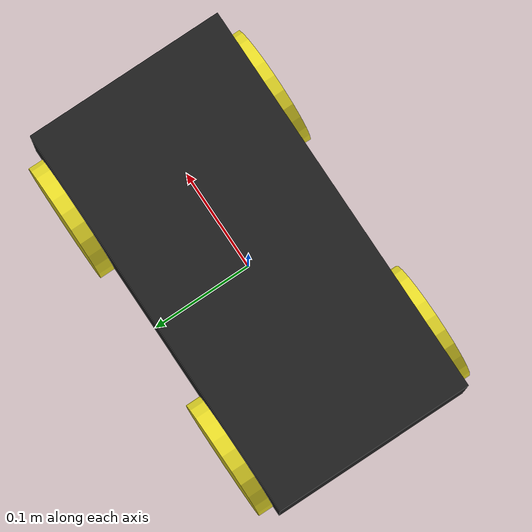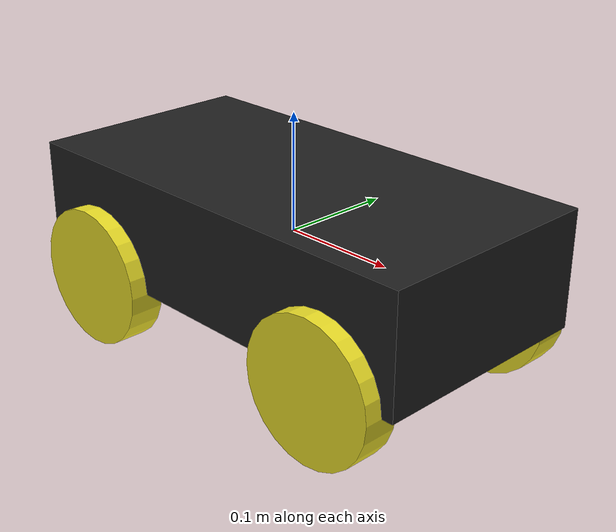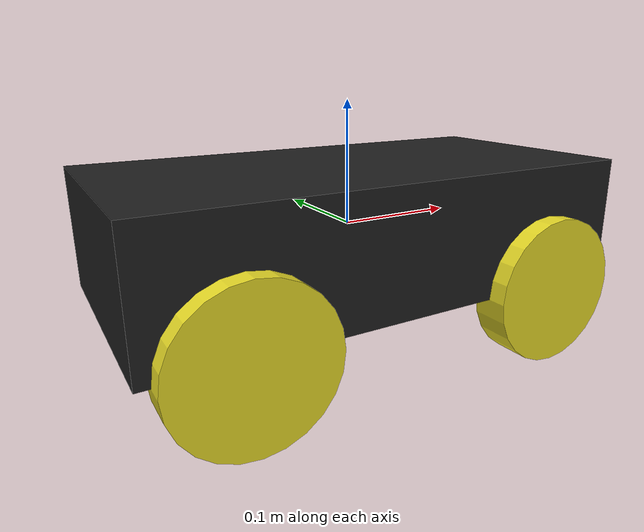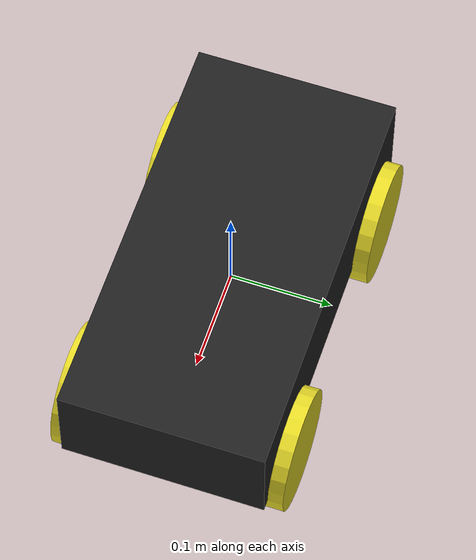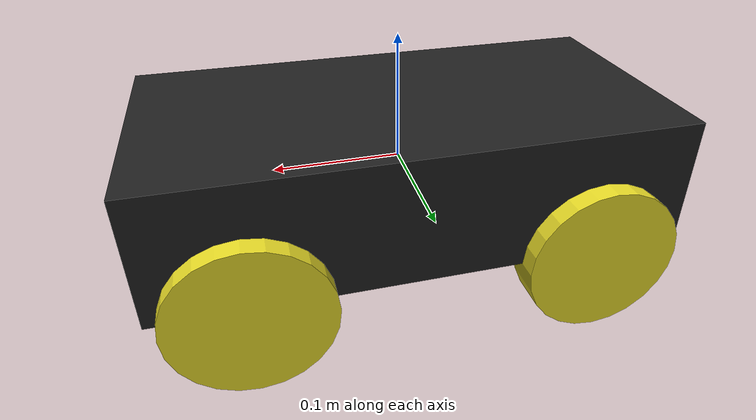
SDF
<?xml version='1.0'?>
<sdf version='1.6'>
	<model name="rover">
		<static>false</static>
		<link name='chassis'>
			<inertial>
				<mass>2.0</mass>
			</inertial>
			<collision name="collision">
				<geometry>
					<box>
						<size>0.4 0.2 0.1</size>
					</box>
				</geometry>
			</collision>
			<visual name="visual">
				<geometry>
					<box>
						<size>0.4 0.2 0.1</size>
					</box>
				</geometry>
				<material>
					<script>
						<uri>file://media/materials/scripts/gazebo.material</uri>
						<name>Gazebo/FlatBlack</name>
					</script>
				</material>
			</visual>
		</link>
		<link name="left_wheel">
			<pose>.13 0.1 -0.05 1.57 0 0</pose>
			<inertial>
				<mass>0.2</mass>
			</inertial>
			<collision name="collision">
				<geometry>
					<cylinder>
						<radius>.06</radius>
						<length>.03</length>
					</cylinder>
				</geometry>
			</collision>
			<visual name="visual">
				<geometry>
					<cylinder>
						<radius>.06</radius>
						<length>.03</length>
					</cylinder>
				</geometry>
				<material>
					<script>
						<uri>file://media/materials/scripts/gazebo.material</uri>
						<name>Gazebo/DarkYellow</name>
					</script>
				</material>
			</visual>
		</link>
		<link name="left_wheel2">
			<pose>-.13 0.1 -0.05 1.57 0 0</pose>
			<inertial>
				<mass>0.2</mass>
			</inertial>
			<collision name="collision">
				<geometry>
					<cylinder>
						<radius>.06</radius>
						<length>.03</length>
					</cylinder>
				</geometry>
			</collision>
			<visual name="visual">
				<geometry>
					<cylinder>
						<radius>.06</radius>
						<length>.03</length>
					</cylinder>
				</geometry>
				<material>
					<script>
						<uri>file://media/materials/scripts/gazebo.material</uri>
						<name>Gazebo/DarkYellow</name>
					</script>
				</material>
			</visual>
		</link>
		<link name="right_wheel">
			<pose>.13 -0.1 -0.05 1.57 0 0</pose>
			<inertial>
				<mass>0.2</mass>
			</inertial>
			<collision name="collision">
				<geometry>
					<cylinder>
						<radius>.06</radius>
						<length>.03</length>
					</cylinder>
				</geometry>
			</collision>
			<visual name="visual">
				<geometry>
					<cylinder>
						<radius>.06</radius>
						<length>.03</length>
					</cylinder>
				</geometry>
				<material>
					<script>
						<uri>file://media/materials/scripts/gazebo.material</uri>
						<name>Gazebo/DarkYellow</name>
					</script>
				</material>
			</visual>
		</link>
		<link name="right_wheel2">
			<pose>-.13 -0.1 -0.05 1.57 0 0</pose>
			<inertial>
				<mass>0.2</mass>
			</inertial>
			<collision name="collision">
				<geometry>
					<cylinder>
						<radius>.06</radius>
						<length>.03</length>
					</cylinder>
				</geometry>
			</collision>
			<visual name="visual">
				<geometry>
					<cylinder>
						<radius>.06</radius>
						<length>.03</length>
					</cylinder>
				</geometry>
				<material>
					<script>
						<uri>file://media/materials/scripts/gazebo.material</uri>
						<name>Gazebo/DarkYellow</name>
					</script>
				</material>
			</visual>
		</link>
		<joint type="revolute" name="left_wheel_hinge">
			<pose>0 0 0 0 0 0</pose>
			<child>left_wheel</child>
			<parent>chassis</parent>
			<axis>
				<xyz>0 0 1</xyz>
			</axis>
		</joint>
		<joint type="revolute" name="left_wheel_hinge2">
			<pose>0 0 0 0 0 0</pose>
			<child>left_wheel2</child>
			<parent>chassis</parent>
			<axis>
				<xyz>0 0 1</xyz>
			</axis>
		</joint>
		<joint type="revolute" name="right_wheel_hinge">
			<pose>0 0 0 0 0 0</pose>
			<child>right_wheel</child>
			<parent>chassis</parent>
			<axis>
				<xyz>0 0 1</xyz>
			</axis>
		</joint>
		<joint type="revolute" name="right_wheel_hinge2">
			<pose>0 0 0 0 0 0</pose>
			<child>right_wheel2</child>
			<parent>chassis</parent>
			<axis>
				<xyz>0 0 1</xyz>
			</axis>
		</joint>
		<plugin name="object_controller" filename="libgazebo_ros_planar_move.so">
			<ros>
				<namespace>/robot</namespace>
			</ros>
			<odometryTopic>odom</odometryTopic>
			<odometryFrame>odom</odometryFrame>
			<odometryRate>20.0</odometryRate>
			<robotBaseFrame>base_footprint</robotBaseFrame>
		</plugin>

	</model>
</sdf>
